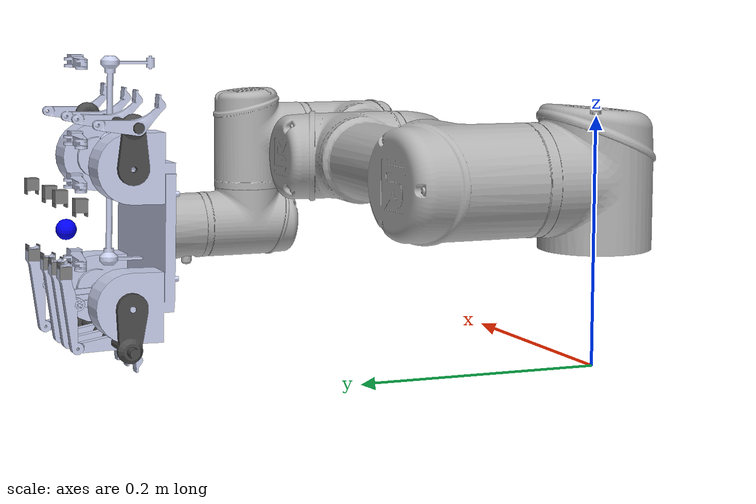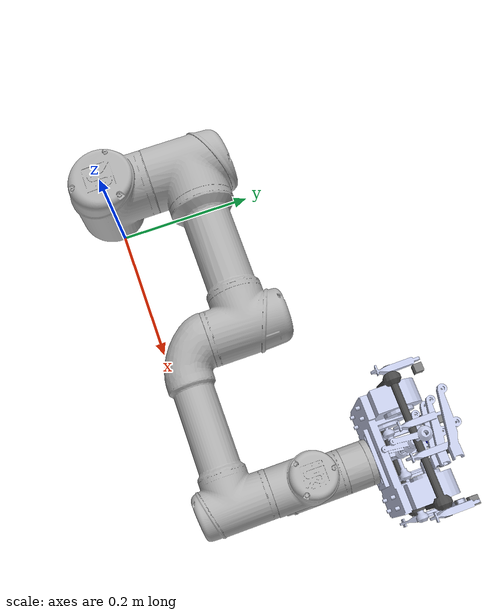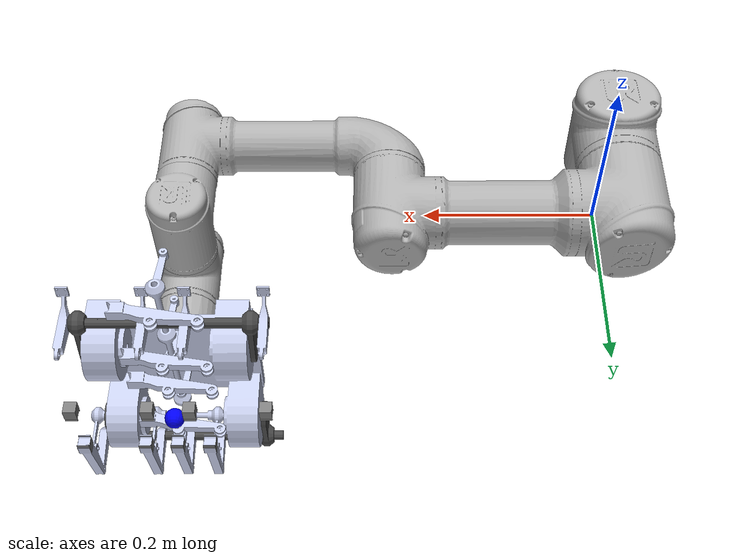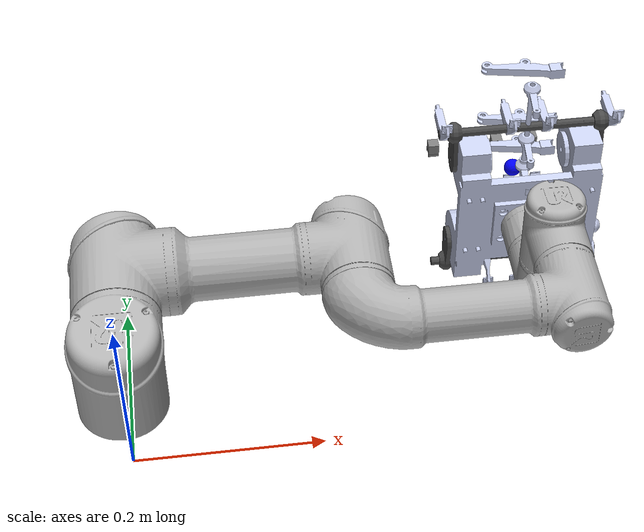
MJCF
<mujoco model="UR3e">
    <compiler angle="radian" meshdir="."/>
    <size njmax="500" nconmax="100" />
    <asset>
        <mesh name="base" file="meshes/base.stl" />
        <mesh name="shoulder" file="meshes/shoulder.stl" />
        <mesh name="upperarm" file="meshes/upperarm.stl" />
        <mesh name="forearm" file="meshes/forearm.stl" />
        <mesh name="wrist1" file="meshes/wrist1.stl" />
        <mesh name="wrist2" file="meshes/wrist2.stl" />
        <mesh name="wrist3" file="meshes/wrist3.stl" />
        <mesh name="gripper_base_link" file="meshes/v2_realistic/base_link.STL" />
        <mesh name="left_short_link" file="meshes/v2_realistic/left_short_link.STL" />
        <mesh name="left_gripper_finger" file="meshes/v2_realistic/left_gripper_finger.STL" />
        <mesh name="left_torque_transfer" file="meshes/v2_realistic/left_torque_transfer.STL" />
        <mesh name="left_long_link" file="meshes/v2_realistic/left_long_link.STL" />
        <mesh name="right_short_link" file="meshes/v2_realistic/right_short_link.STL" />
        <mesh name="right_gripper_finger" file="meshes/v2_realistic/right_gripper_finger.STL" />
        <mesh name="right_torque_transfer" file="meshes/v2_realistic/right_torque_transfer.STL" />
        <mesh name="right_long_link" file="meshes/v2_realistic/right_long_link.STL" />
    </asset>

    <actuator>

        <velocity ctrllimited="true" ctrlrange="-2.0 2.0" joint="joint_1" name="torq_1" kv="500" />
        <velocity ctrllimited="true" ctrlrange="-2.0 2.0" joint="joint_2" name="torq_2" kv="500" />
        <velocity ctrllimited="true" ctrlrange="-2.0 2.0" joint="joint_3" name="torq_3" kv="500" />
        <velocity ctrllimited="true" ctrlrange="-2.0 2.0" joint="joint_4" name="torq_4" kv="500" />
        <velocity ctrllimited="true" ctrlrange="-2.0 2.0" joint="joint_5" name="torq_5" kv="500" />
        <velocity ctrllimited="true" ctrlrange="-2.0 2.0" joint="joint_6" name="torq_6" kv="500" />

        <position ctrllimited="true" ctrlrange="-0.74 0.74" joint="base_left_short_joint" kp="15" name="left_finger_joint" forcelimited="true" forcerange="-5 5"/>
        <position ctrllimited="true" ctrlrange="-0.74 0.74" joint="base_right_short_joint" kp="15" name="right_finger_joint" forcelimited="true" forcerange="-5 5"/>
        <position ctrllimited="true" ctrlrange="-0.0001 0.0001" joint="base_left_torque_joint" kp="2" name="left_torque_joint" forcelimited="true" forcerange="-2 2"/>
        <position ctrllimited="true" ctrlrange="-0.0001 0.0001" joint="base_right_torque_joint" kp="2" name="right_torque_joint" forcelimited="true" forcerange="-2 2"/>
    </actuator>

    <equality>
        <connect body1="left_long_link" body2="left_gripper_finger" active="true" solref='0.005 1' anchor="-0.0 -0.003 0.039"/>
        <connect body1="right_long_link" body2="right_gripper_finger" active="true" solref='0.005 1' anchor="0.0 0.005 0.039"/>
    </equality>

    <worldbody>
        <camera name="camera_1" mode="fixed" pos="-0.5 0.8 1.1" quat="-0.707107 -0.707107 0.7 1" />
        <body name="shoulder_link" pos="0 0 0.15185" quat="0 0 0 1">
            <inertial pos="0 0 0" mass="2" diaginertia="0.00809316 0.00809316 0.005625" />
            <joint name="joint_1" pos="0 0 0" axis="0 0 1" limited="true" range="-6.28319 6.28319" />
            <geom quat="0 0 0 1" type="mesh" rgba="0.7 0.7 0.7 1" group="1"  mesh="shoulder" />
            <geom quat="0 0 0 1" type="mesh" rgba="0.7 0.7 0.7 1" group="0"  mesh="shoulder" />
            <body name="upper_arm_link" pos="0 0 0" quat="0.707107 0.707107 0 0">
                <inertial pos="-0.121825 0 0.12" quat="0.707107 0 0.707107 0" mass="3.42" diaginertia="0.0217285 0.0217285 0.00961875" />
                <joint name="joint_2" pos="0 0 0" axis="0 0 1" limited="true" range="-6.28319 6.28319" />
                <geom pos="0 0 0.12" quat="0.5 0.5 -0.5 -0.5" group="1"  type="mesh" rgba="0.7 0.7 0.7 1" mesh="upperarm" />
                <geom pos="0 0 0.12" quat="0.5 0.5 -0.5 -0.5" group="0"  type="mesh" rgba="0.7 0.7 0.7 1" mesh="upperarm" />
                <body name="forearm_link" pos="-0.24355 0 0">
                    <inertial pos="-0.1066 0 0.027" quat="0.707107 0 0.707107 0" mass="1.26" diaginertia="0.00654457 0.00654457 0.00354375" />
                    <joint name="joint_3" pos="0 0 0" axis="0 0 1" limited="true" range="-3.14159 3.14159" />
                    <geom pos="0 0 0.027" quat="0.5 0.5 -0.5 -0.5" group="1"  type="mesh" rgba="0.7 0.7 0.7 1" mesh="forearm" />
                    <geom pos="0 0 0.027" quat="0.5 0.5 -0.5 -0.5" group="0"  type="mesh" rgba="0.7 0.7 0.7 1" mesh="forearm" />
                    <body name="wrist_1_link" pos="-0.2132 0 0.13105">
                        <inertial pos="0 0 0" quat="0.5 0.5 -0.5 0.5" mass="0.8" diaginertia="0.00225 0.002085 0.002085" />
                        <joint name="joint_4" pos="0 0 0" axis="0 0 1" limited="true" range="-6.28319 6.28319" />
                        <geom pos="0 0 -0.104" quat="0.707107 0.707107 0 0" group="1"  type="mesh" rgba="0.7 0.7 0.7 1" mesh="wrist1" />
                        <geom pos="0 0 -0.104" quat="0.707107 0.707107 0 0" group="0"  type="mesh" rgba="0.7 0.7 0.7 1" mesh="wrist1" />
                        <body name="wrist_2_link" pos="0 -0.08535 -1.75056e-11" quat="0.707107 0.707107 0 0">
                            <inertial pos="0 0 0" quat="0.5 0.5 -0.5 0.5" mass="0.8" diaginertia="0.00225 0.002085 0.002085" />
                            <joint name="joint_5" pos="0 0 0"  axis="0 0 1" limited="true" range="-6.28319 6.28319" />
                            <geom pos="0 0 -0.08535" type="mesh" group="1" rgba="0.7 0.7 0.7 1" mesh="wrist2" />
                            <geom pos="0 0 -0.08535" type="mesh" group="0" rgba="0.7 0.7 0.7 1" mesh="wrist2" />
                            <body name="wrist_3_link" pos="0 0.0921 -1.889e-11" quat="0.707107 -0.707107 0 0">
                                <inertial pos="0 0 -0.02" quat="0.5 0.5 -0.5 0.5" mass="0.35" diaginertia="0.0001792 0.000136267 0.000136267" />
                                <joint name="joint_6" pos="0 0 0" axis="0 0 1" limited="true" range="-6.28319 6.28319" />
                                <geom pos="0 0 -0.0921" quat="0.707107 0.707107 0 0" group="1" type="mesh" rgba="0.7 0.7 0.7 1" mesh="wrist3" />
                                <geom pos="0 0 -0.0921" quat="0.707107 0.707107 0 0" group="0" type="mesh" rgba="0.7 0.7 0.7 1" mesh="wrist3" />
                                 <body name="gripper_base_link" pos="0.0 0.0 0.0" quat="0 0 0.01 1">
                                    <inertial pos="0 0 0" quat="0 0 0 1" mass="5.016917" diaginertia="1.4281e-05 1.1483e-05 3.1599e-06" />
        <geom type="mesh" group="1" contype="1" conaffinity="1" rgba="0.79216 0.81961 0.93333 1" mesh="gripper_base_link" />
        <geom type="mesh" rgba="0.79216 0.81961 0.93333 1" mesh="gripper_base_link" />

        <body name="left_short_link" pos="0.00045 -0.06436 0.04775">
            <inertial pos="-0.00022 0 0.0067619" quat="0.5 0.5 0.5 0.5" mass="0.016917" diaginertia="1.4281e-05 1.1483e-05 3.1599e-06" />
            <joint name="base_left_short_joint" pos="0 0 0" axis="-1 0 0" />
            <geom type="mesh" group="1" contype="1" conaffinity="1" rgba="0.79216 0.81961 0.93333 1" mesh="left_short_link" />
            <geom type="mesh" rgba="0.79216 0.81961 0.93333 1" mesh="left_short_link" />
            <body name="left_gripper_finger" pos="0 0 0.039">
                <inertial pos="-0.00018314 0.0018228 0.0083165" quat="0.635428 0.771978 -0.0124217 0.0112704" mass="0.032218" diaginertia="1.84182e-05 1.82648e-05 6.97848e-07" />
                <joint name="left_short_gripper_joint" pos="0 0 0" axis="1 0 0" />
                <geom type="mesh" group="1" contype="1" conaffinity="1" rgba="0.79216 0.81961 0.93333 1" mesh="left_gripper_finger" />
                <body name="finger_L1" pos="0.0938 0.03058 0.01431">
                    <inertial pos="0 0 0" quat="0 0 0 1" mass="0.01" diaginertia="0.01 0.01 0.01" />
                    <geom size="0.00627 0.006 0.00601" pos="0 0 0" quat="0 0 0 1" type="box" group="0" solref="0.01 0.5" friction = "2 0.05 0.0001" conaffinity="1" contype="1" name="finger_L1_pad"/>
                </body>
                <body name="finger_L1_top" pos="0.0938 0.03864 0.0198">
                    <inertial pos="0 0 0" quat="0 0 0 1" mass="0.01" diaginertia="0.01 0.01 0.01" />
                    <geom size="0.006 0.00175 0.00049" pos="0 0 0" quat="0 0 0 1" type="box" group="0" solref="0.01 0.5" friction = "2 0.05 0.0001" conaffinity="1" contype="1" name="finger_L1_pad_top"/>
                </body>
                <body name="finger_L1_bot" pos="0.0938 0.03864 0.00876">
                    <inertial pos="0 0 0" quat="0 0 0 1" mass="0.01" diaginertia="0.01 0.01 0.01" />
                    <geom size="0.006 0.00175 0.00049" pos="0 0 0" quat="0 0 0 1" type="box" group="0" solref="0.01 0.5" friction = "2 0.05 0.0001" conaffinity="1" contype="1" name="finger_L1_pad_bot"/>
                </body>
                <body name="finger_L2" pos="0.02026 0.03058 0.01431">
                    <inertial pos="0 0 0" quat="0 0 0 1" mass="0.01" diaginertia="0.01 0.01 0.01" />
                    <geom size="0.006 0.00627 0.00601" pos="0 0 0" quat="0 0 0 1" type="box" group="0" solref="0.01 0.5" friction = "2 0.05 0.0001" conaffinity="1" contype="1" name="finger_L2_pad"/>
                </body>
                <body name="finger_L2_top" pos="0.02026 0.03864 0.0198">
                    <inertial pos="0 0 0" quat="0 0 0 1" mass="0.01" diaginertia="0.01 0.01 0.01" />
                    <geom size="0.006 0.00175 0.00049" pos="0 0 0" quat="0 0 0 1" type="box" group="0" solref="0.01 0.5" friction = "2 0.05 0.0001" conaffinity="1" contype="1" name="finger_L2_pad_top"/>
                </body>
                <body name="finger_L2_bot" pos="0.02026 0.03864 0.00876">
                    <inertial pos="0 0 0" quat="0 0 0 1" mass="0.01" diaginertia="0.01 0.01 0.01" />
                    <geom size="0.006 0.00175 0.00049" pos="0 0 0" quat="0 0 0 1" type="box" group="0" solref="0.01 0.5" friction = "2 0.05 0.0001" conaffinity="1" contype="1" name="finger_L2_pad_bot"/>
                </body>
                <body name="finger_L3" pos="-0.02026 0.03058 0.01431">
                    <inertial pos="0 0 0" quat="0 0 0 1" mass="0.01" diaginertia="0.01 0.01 0.01" />
                    <geom size="0.006 0.00627 0.00601" pos="0 0 0" quat="0 0 0 1" type="box" group="0" solref="0.01 0.5" friction = "2 0.05 0.0001" conaffinity="1" contype="1" name="finger_L3_pad"/>
                </body>
                <body name="finger_L3_top" pos="-0.02026 0.03864 0.0198">
                    <inertial pos="0 0 0" quat="0 0 0 1" mass="0.01" diaginertia="0.01 0.01 0.01" />
                    <geom size="0.006 0.00175 0.00049" pos="0 0 0" quat="0 0 0 1" type="box" group="0" solref="0.01 0.5" friction = "2 0.05 0.0001" conaffinity="1" contype="1" name="finger_L3_pad_top"/>
                </body>
                <body name="finger_L3_bot" pos="-0.02026 0.03864 0.00876">
                    <inertial pos="0 0 0" quat="0 0 0 1" mass="0.01" diaginertia="0.01 0.01 0.01" />
                    <geom size="0.006 0.00175 0.00049" pos="0 0 0" quat="0 0 0 1" type="box" group="0" solref="0.01 0.5" friction = "2 0.05 0.0001" conaffinity="1" contype="1" name="finger_L3_pad_bot"/>
                </body>
                <body name="finger_L4" pos="-0.0938 0.03058 0.01431">
                    <inertial pos="0 0 0" quat="0 0 0 1" mass="0.01" diaginertia="0.01 0.01 0.01" />
                    <geom size="0.006 0.00627 0.00601" pos="0 0 0" quat="0 0 0 1" type="box" group="0" solref="0.01 0.5" friction = "2 0.05 0.0001" conaffinity="1" contype="1" name="finger_L4_pad"/>
                </body>
                <body name="finger_L4_top" pos="-0.0938 0.03864 0.0198">
                    <inertial pos="0 0 0" quat="0 0 0 1" mass="0.01" diaginertia="0.01 0.01 0.01" />
                    <geom size="0.006 0.00175 0.00049" pos="0 0 0" quat="0 0 0 1" type="box" group="0" solref="0.01 0.5" friction = "2 0.05 0.0001" conaffinity="1" contype="1" name="finger_L4_pad_top"/>
                </body>
                <body name="finger_L4_bot" pos="-0.0938 0.03864 0.00876">
                    <inertial pos="0 0 0" quat="0 0 0 1" mass="0.01" diaginertia="0.01 0.01 0.01" />
                    <geom size="0.006 0.00175 0.00049" pos="0 0 0" quat="0 0 0 1" type="box" group="0" solref="0.01 0.5" friction = "2 0.05 0.0001" conaffinity="1" contype="1" name="finger_L4_pad_bot"/>
                </body>
            </body>
        </body>
        <body name="left_torque_transfer" pos="0.00045 -0.06436 0.04775">
            <inertial pos="0.0010114 -0.02908 0" quat="0.000887307 0.707106 -0.000887307 0.707106" mass="0.047419" diaginertia="0.00025664 0.000245251 1.44445e-05" />
            <joint name="base_left_torque_joint" pos="0 0 0" axis="-1 0 0" />
            <geom type="mesh" group="1" contype="1" conaffinity="0" rgba="0.29804 0.29804 0.29804 1" mesh="left_torque_transfer" />
            <geom type="mesh" rgba="0.29804 0.29804 0.29804 1" mesh="left_torque_transfer" />
            <body name="left_long_link" pos="0 -0.039 0">
                <inertial pos="-0.00021999 -0.0045033 0.0085751" quat="0.989592 -0.143901 0 0" mass="0.018801" diaginertia="6.4197e-06 5.88492e-06 7.30177e-07" />
                <joint name="left_torque_long_joint" pos="0 0 0" axis="1 0 0" />
                <geom type="mesh" group="1" contype="1" conaffinity="1" rgba="0.79216 0.81961 0.93333 1" mesh="left_long_link" />
                <geom type="mesh" rgba="0.79216 0.81961 0.93333 1" mesh="left_long_link" />
            </body>
        </body>
        <body name="right_short_link" pos="0.00045 0.06564 0.04775">
            <inertial pos="0.016533 0.00022788 0.0067581" quat="0.509065 0.490768 0.507641 0.49224" mass="0.016917" diaginertia="1.42812e-05 1.14829e-05 3.15983e-06" />
            <joint name="base_right_short_joint" pos="0 0 0" axis="-1 0 0" />
            <geom type="mesh" group="1" contype="1" conaffinity="1" rgba="0.79216 0.81961 0.93333 1" mesh="right_short_link" />
            <geom type="mesh" rgba="0.79216 0.81961 0.93333 1" mesh="right_short_link" />
            <body name="right_gripper_finger" pos="0 0.0013143 0.038978">
                <inertial pos="0.023251 -0.0021824 0.0082294" quat="0.757988 0.652052 0.0115399 -0.0121765" mass="0.032218" diaginertia="1.84182e-05 1.82649e-05 6.97804e-07" />
                <joint name="right_short_gripper_joint" pos="0 0 0" axis="1 0 0" />
                <geom type="mesh" group="1" contype="1" conaffinity="1" rgba="0.79216 0.81961 0.93333 1" mesh="right_gripper_finger" />
                <body name="finger_R1" pos="0.0938 -0.03058 0.01291">
                    <inertial pos="0 0 0" quat="0 0 0 1" mass="0.01" diaginertia="0.01 0.01 0.01" />
                    <geom size="0.00627 0.006 0.00601" pos="0 0 0" quat="0 0 0 1" type="box" group="0" solref="0.01 0.5" friction = "2 0.05 0.0001" conaffinity="1" contype="1" name="finger_R1_pad"/>
                </body>
                <body name="finger_R1_top" pos="0.0938 -0.03864 0.0184">
                    <inertial pos="0 0 0" quat="0 0 0 1" mass="0.01" diaginertia="0.01 0.01 0.01" />
                    <geom size="0.006 0.00175 0.00049" pos="0 0 0" quat="0 0 0 1" type="box" group="0" solref="0.01 0.5" friction = "2 0.05 0.0001" conaffinity="1" contype="1" name="finger_R1_pad_top"/>
                </body>
                <body name="finger_R1_bot" pos="0.0938 -0.03864 0.00736">
                    <inertial pos="0 0 0" quat="0 0 0 1" mass="0.01" diaginertia="0.01 0.01 0.01" />
                    <geom size="0.006 0.00175 0.00049" pos="0 0 0" quat="0 0 0 1" type="box" group="0" solref="0.01 0.5" friction = "2 0.05 0.0001" conaffinity="1" contype="1" name="finger_R1_pad_bot"/>
                </body>
                <body name="finger_R2" pos="0.03199 -0.03058 0.01291">
                    <inertial pos="0 0 0" quat="0 0 0 1" mass="0.01" diaginertia="0.01 0.01 0.01" />
                    <geom size="0.00627 0.006 0.00601" pos="0 0 0" quat="0 0 0 1" type="box" group="0" solref="0.01 0.5" friction = "2 0.05 0.0001" conaffinity="1" contype="1" name="finger_R2_pad"/>
                </body>
                <body name="finger_R2_top" pos="0.03199 -0.03864 0.0184">
                    <inertial pos="0 0 0" quat="0 0 0 1" mass="0.01" diaginertia="0.01 0.01 0.01" />
                    <geom size="0.006 0.00175 0.00049" pos="0 0 0" quat="0 0 0 1" type="box" group="0" solref="0.01 0.5" friction = "2 0.05 0.0001" conaffinity="1" contype="1" name="finger_R2_pad_top"/>
                </body>
                <body name="finger_R2_bot" pos="0.03199 -0.03864 0.00736">
                    <inertial pos="0 0 0" quat="0 0 0 1" mass="0.01" diaginertia="0.01 0.01 0.01" />
                    <geom size="0.006 0.00175 0.00049" pos="0 0 0" quat="0 0 0 1" type="box" group="0" solref="0.01 0.5" friction = "2 0.05 0.0001" conaffinity="1" contype="1" name="finger_R2_pad_bot"/>
                </body>
                <body name="finger_R3" pos="0 -0.03058 0.01291">
                    <inertial pos="0 0 0" quat="0 0 0 1" mass="0.01" diaginertia="0.01 0.01 0.01" />
                    <geom size="0.00627 0.006 0.00601" pos="0 0 0" quat="0 0 0 1" type="box" group="0" solref="0.01 0.5" friction = "2 0.05 0.0001" conaffinity="1" contype="1" name="finger_R3_pad"/>
                </body>
                <body name="finger_R3_top" pos="0 -0.03864 0.0184">
                    <inertial pos="0 0 0" quat="0 0 0 1" mass="0.01" diaginertia="0.01 0.01 0.01" />
                    <geom size="0.006 0.00175 0.00049" pos="0 0 0" quat="0 0 0 1" type="box" group="0" solref="0.01 0.5" friction = "2 0.05 0.0001" conaffinity="1" contype="1" name="finger_R3_pad_top"/>
                </body>
                <body name="finger_R3_bot" pos="0 -0.03864 0.00736">
                    <inertial pos="0 0 0" quat="0 0 0 1" mass="0.01" diaginertia="0.01 0.01 0.01" />
                    <geom size="0.006 0.00175 0.00049" pos="0 0 0" quat="0 0 0 1" type="box" group="0" solref="0.01 0.5" friction = "2 0.05 0.0001" conaffinity="1" contype="1" name="finger_R3_pad_bot"/>
                </body>
                <body name="finger_R4" pos="-0.03243 -0.03058 0.01291">
                    <inertial pos="0 0 0" quat="0 0 0 1" mass="0.01" diaginertia="0.01 0.01 0.01" />
                    <geom size="0.00627 0.006 0.00601" pos="0 0 0" quat="0 0 0 1" type="box" group="0" solref="0.01 0.5" friction = "2 0.05 0.0001" conaffinity="1" contype="1" name="finger_R4_pad"/>
                </body>
                <body name="finger_R4_top" pos="-0.03243 -0.03864 0.0184">
                    <inertial pos="0 0 0" quat="0 0 0 1" mass="0.01" diaginertia="0.01 0.01 0.01" />
                    <geom size="0.006 0.00175 0.00049" pos="0 0 0" quat="0 0 0 1" type="box" group="0" solref="0.01 0.5" friction = "2 0.05 0.0001" conaffinity="1" contype="1" name="finger_R4_pad_top"/>
                </body>
                <body name="finger_R4_bot" pos="-0.03243 -0.03864 0.00736">
                    <inertial pos="0 0 0" quat="0 0 0 1" mass="0.01" diaginertia="0.01 0.01 0.01" />
                    <geom size="0.006 0.00175 0.00049" pos="0 0 0" quat="0 0 0 1" type="box" group="0" solref="0.01 0.5" friction = "2 0.05 0.0001" conaffinity="1" contype="1" name="finger_R4_pad_bot"/>
                </body>
            </body>
        </body>
        <body name="right_torque_transfer" pos="0.00045 0.06564 0.04775">
            <inertial pos="-0.0014514 0.029044 0.0014437" quat="-0.0166731 0.70691 -0.0184472 0.706866" mass="0.047419" diaginertia="0.000256638 0.000245253 1.44445e-05" />
            <joint name="base_right_torque_joint" pos="0 0 0" axis="-1 0 0" />
            <geom type="mesh" group="1" contype="1" conaffinity="1" rgba="0.29804 0.29804 0.29804 1" mesh="right_torque_transfer" />
            <geom type="mesh" rgba="0.29804 0.29804 0.29804 1" mesh="right_torque_transfer" />
            <body name="right_long_link" pos="0 0.038952 0.0019362">
                <inertial pos="0.023287 0.0048111 0.0084062" quat="0.992039 0.125932 0 0" mass="0.018801" diaginertia="6.4197e-06 5.88491e-06 7.30194e-07" />
                <joint name="right_torque_long_joint" pos="0 0 0" axis="-1 0 0" />
                <geom type="mesh" group="1" contype="1" conaffinity="0" rgba="0.79216 0.81961 0.93333 1" mesh="right_long_link" />
                <geom type="mesh" rgba="0.79216 0.81961 0.93333 1" mesh="right_long_link" />
            </body>
        </body>
                            <body name="right_hand" pos="0 0 0.09" quat="0 0 0 1" >
                                        <!-- This sites were added for visualization. They are all standardized between models-->
                                        <!-- Position mimics the gripper attachment point (right_hand) -->
                                        <!--  Y-axis should be perpendicular to grasping motion, and Z-axis should point out of the robot eef -->
                                        <site name="ee" pos="0 0 0" size="0.01 0.01 0.01" rgba="0 0 1 1" type="sphere" group="1"/>
                                        <site name="ee_x" pos="0 0 0" size="0.005 .1"  quat="0.707105 0.707108 0 0 " rgba="1 0 0 0" type="cylinder" group="1"/>
                                        <site name="ee_z" pos="0 0 0" size="0.005 .1" quat="0.707105 0 0 0.707108" rgba="0 0 1 0" type="cylinder" group="1"/>
                                        <site name="ee_y" pos="0 0 0" size="0.005 .1" quat="0.707105 0 0.707108 0 " rgba="0 1 0 0" type="cylinder" group="1"/>
                                        <!-- This camera points out from the eef. -->
                                        <camera mode="fixed" name="eye_in_hand" pos="0.05 0 0" quat="0 0.707108 0.707108 0" fovy="75"/>
                                        <!-- To add gripper -->
                                    </body>
                                </body>

                            </body>
                        </body>
                    </body>
                </body>
            </body>
        </body>
    </worldbody>
    <contact>

        <exclude body1="gripper_base_link" body2="left_short_link"/>
        <exclude body1="gripper_base_link" body2="right_short_link"/>
        <exclude body1="gripper_base_link" body2="left_torque_transfer"/>
        <exclude body1="gripper_base_link" body2="right_torque_transfer"/>
        <exclude body1="gripper_base_link" body2="left_long_link"/>
        <exclude body1="gripper_base_link" body2="right_long_link"/>
        <exclude body1="gripper_base_link" body2="left_gripper_finger"/>
        <exclude body1="gripper_base_link" body2="right_gripper_finger"/>

        <exclude body1="left_long_link" body2="left_short_link"/>
        <exclude body1="left_long_link" body2="right_short_link"/>
        <exclude body1="left_long_link" body2="left_torque_transfer"/>
        <exclude body1="left_long_link" body2="right_torque_transfer"/>
        <exclude body1="left_long_link" body2="right_long_link"/>
        <exclude body1="left_long_link" body2="left_gripper_finger"/>
        <exclude body1="left_long_link" body2="right_gripper_finger"/>

        <exclude body1="left_short_link" body2="right_short_link"/>
        <exclude body1="left_short_link" body2="left_torque_transfer"/>
        <exclude body1="left_short_link" body2="right_torque_transfer"/>
        <exclude body1="left_short_link" body2="right_long_link"/>
        <exclude body1="left_short_link" body2="left_gripper_finger"/>
        <exclude body1="left_short_link" body2="right_gripper_finger"/>

        <exclude body1="left_torque_transfer" body2="right_short_link"/>
        <exclude body1="left_torque_transfer" body2="right_torque_transfer"/>
        <exclude body1="left_torque_transfer" body2="right_long_link"/>
        <exclude body1="left_torque_transfer" body2="left_gripper_finger"/>
        <exclude body1="left_torque_transfer" body2="right_gripper_finger"/>

        <exclude body1="left_gripper_finger" body2="right_short_link"/>
        <exclude body1="left_gripper_finger" body2="right_long_link"/>
        <exclude body1="left_gripper_finger" body2="right_torque_transfer"/>
        <exclude body1="left_gripper_finger" body2="right_gripper_finger"/>

        <exclude body1="right_long_link" body2="right_short_link"/>
        <exclude body1="right_long_link" body2="right_torque_transfer"/>
        <exclude body1="right_long_link" body2="right_gripper_finger"/>

        <exclude body1="right_short_link" body2="right_torque_transfer"/>
        <exclude body1="right_short_link" body2="right_gripper_finger"/>

        <exclude body1="right_torque_transfer" body2="right_gripper_finger"/>

    </contact>

    <sensor>

        <framepos name="gripper_pos_sensor" objtype="body" objname="gripper_base_link" />
        <framequat name="gripper_quat_sensor" objtype="body" objname="gripper_base_link" />
		<!--accelerometer name="payload_accelerometer" site="point_mass_site"/-->
    </sensor>
</mujoco>
